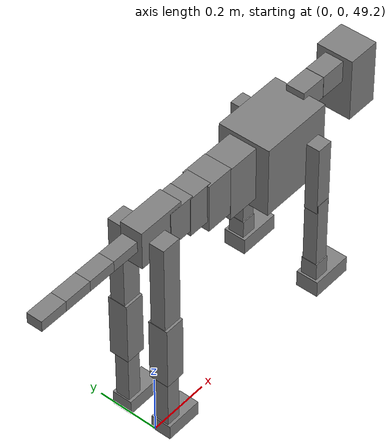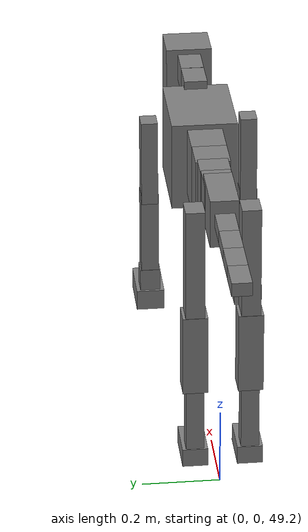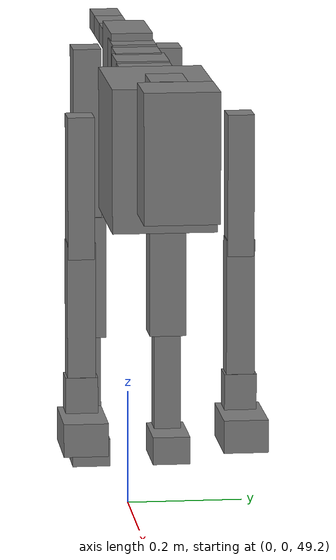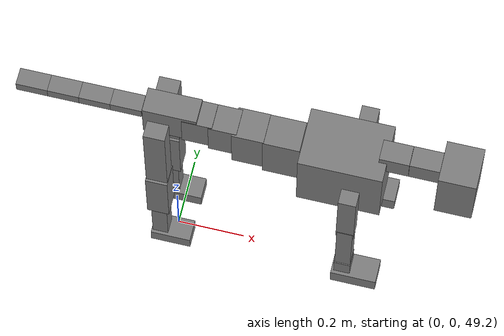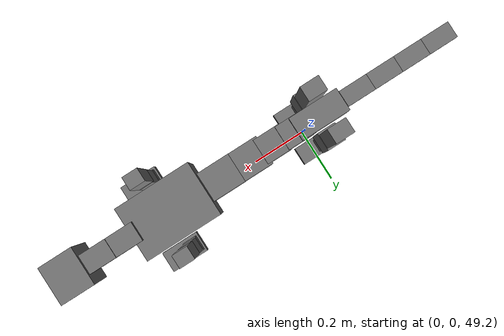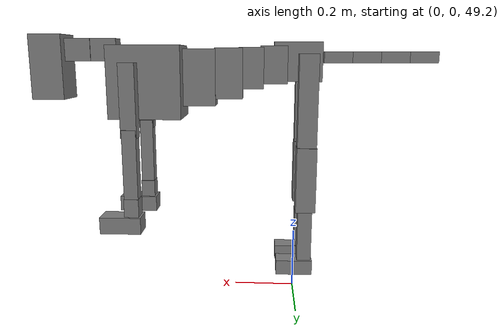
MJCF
<mujoco model="dog">

    <default>
        <joint armature="0.02" stiffness="1" damping="0.2" limited="true"/>
        <geom condim="3" friction="1 0.05 0.05" margin="0.01"/>
        <motor ctrllimited="true" ctrlrange="-1.0 1.0" forcelimited="true" gear="50"/>
    </default>

    <compiler inertiafromgeom="true" angle="radian"/>

    <option timestep="0.016" iterations="50" tolerance="1e-10" solver="Newton" jacobian="dense" cone="pyramidal"/>

    <size nconmax="20000" njmax="60000" nstack="5000000"/>
    <visual>
        <map force="0.1" zfar="30"/>
        <rgba haze="0.15 0.25 0.35 1"/>
        <quality shadowsize="2048"/>
        <global offwidth="800" offheight="800"/>
    </visual>

    <asset>
        <texture type="skybox" builtin="gradient" rgb1="0.3 0.5 0.7" rgb2="0 0 0" width="512" height="512"/>
        <texture name="texplane" type="2d" builtin="checker" rgb1=".2 .3 .4" rgb2=".1 0.15 0.2" width="512" height="512"
                 mark="cross" markrgb=".8 .8 .8"/>
        <texture name="texgeom" type="cube" builtin="flat" mark="cross" width="127" height="1278" rgb1="0.8 0.6 0.4"
                 rgb2="0.8 0.6 0.4" markrgb="1 1 1" random="0.01"/>

        <material name="matplane" reflectance="0.3" texture="texplane" texrepeat="1 1" texuniform="true"/>
        <material name="matgeom" texture="texgeom" texuniform="true" rgba="0.8 0.6 .4 1"/>
    </asset>

    <worldbody>
        <geom name="floor" pos="0 0 0" size="0 0 .25" type="plane" material="matplane" condim="3"/>

        <light directional="false" diffuse=".2 .2 .2" specular="0 0 0" pos="0 0 5" dir="0 0 -1" castshadow="false"/>
        <light mode="targetbodycom" target="torso" directional="false" diffuse=".8 .8 .8" specular="0.3 0.3 0.3"
               pos="0 0 4.0" dir="0 0 -1"/>

        <body name="root" pos="0 0 50">
            <freejoint name="root_1"/>
            <geom type="box" pos="0 0 -0.02" size="0.0774  0.0358  0.063" density="2030"/>

            <body name="spine1" pos="0.054 0 0">
                <joint name="spine1_y" axis="0 1 0" range="0 0.7" limited="true"/>
                <geom type="box" pos="0.02375 0 -0.03" size="0.04375  0.0375  0.05985" density="2030"/>

                <body name="spine2" pos="0.0612 0 0">
                    <joint name="spine2_y" axis="0 1 0" range="-0.15 0.15" limited="true"/>
                    <geom type="box" pos="0.03555  0  -0.04" size="0.04055  0.039  0.06615" density="2030"/>

                    <body name="spine3" pos="0.0730 0 0">
                        <joint name="spine3_y" axis="0 1 0" range="-0.15 0.15" limited="true"/>
                        <geom type="box" pos="0.03555  0  -0.057" size="0.04555  0.0445  0.081" density="2030"/>

                        <body name="spine4" pos="0.0780 0 0">
                            <joint name="spine4_y" axis="0 1 0" range="-0.15 0.15" limited="true"/>
                            <geom type="box" pos="0.05265  0  -0.07" size="0.05265  0.045  0.09135" density="2030"/>

                            <body name="torso" pos="0.1082 0 0">
                                <joint name="torso_y" axis="0 1 0" range="-0.15 0.15" limited="true"/>
                                <geom type="box" pos="0.11925  0  -0.085" size="0.11925  0.085  0.11745"
                                      density="2030"/>

                                <body name="neck1" pos="0.2160  0   0.0180">
                                    <joint name="neck1_y" axis="0 1 0" range="-1.2  -1" limited="true"/>
                                    <geom type="box" pos="0.0423  0  0" size="0.0423  0.03  0.036" density="2325"/>

                                    <body name="neck2" pos="0.0853  0  0">
                                        <joint name="neck2_y" axis="0 1 0" range="0.1  0" limited="true"/>
                                        <geom type="box" pos="0.0423  0  0" size="0.0423  0.03  0.036" density="2325"/>

                                        <body name="head" pos="0.0853  0  0">
                                            <joint name="head_y" axis="0 1 0" range="-0.3  -0.2" limited="true"/>
                                            <geom type="box" pos="0.0531  0  -0.055" size="0.0531  0.06  0.1044"
                                                  density="4030"/>

                                        </body>
                                    </body>
                                </body>

                                <body name="front_shoulder" pos="0.156  0   -0.0480">
                                    <joint name="front_shoulder_y" axis="0 1 0" range="-1 1.5" limited="true"/>
                                    <geom type="box" pos="0 0.13 -0.0899" size="0.0253  0.0217  0.1165" density="1158"/>
                                    <geom type="box" pos="0 -0.13 -0.0899" size="0.0253  0.0217  0.1165"
                                          density="1158"/>

                                    <body name="front_elbow" pos="0  0  -0.1797">
                                        <joint name="front_elbow_y" axis="0 1 0" range="-2 0" limited="true"/>
                                        <geom type="box" pos="0 0.13 -0.1180" size="0.0226  0.0231  0.1180"
                                              density="1081"/>
                                        <geom type="box" pos="0 -0.13 -0.1180" size="0.0226  0.0231  0.1180"
                                              density="1081"/>

                                        <body name="front_wrist" pos="0  0  -0.2360">
                                            <joint name="front_wrist_y" axis="0 1 0" range="-0.2 0" limited="true"/>
                                            <geom type="box" pos="0 0.13 -0.0304" size="0.0237  0.0263  0.0436"
                                                  density="1664"/>
                                            <geom type="box" pos="0 -0.13 -0.0304" size="0.0237  0.0263  0.0436"
                                                  density="1664"/>

                                            <body name="front_finger_end" pos="0  0  -0.0608">
                                                <joint name="front_finger_y" axis="0 1 0" range="-0.4 1"
                                                       limited="true"/>
                                                <geom type="box" pos="0.0363  0.13  -0.0121"
                                                      size="0.0665  0.0363  0.0271" density="1515"/>
                                                <geom type="box" pos="0.0363  -0.13  -0.0121"
                                                      size="0.0665  0.0363  0.0271" density="1515"/>

                                            </body>

                                        </body>
                                    </body>
                                </body>

                            </body>
                        </body>
                    </body>
                </body>
            </body>

            <body name="back_hip" pos="-0.03 0 -0.018">
                <joint name="back_hip_y" axis="0 1 0" range="-1.5 0.3" limited="true"/>
                <geom type="box" pos="0 0.07 -0.1436" size="0.0310  0.0243  0.1664" density="1154"/>
                <geom type="box" pos="0 -0.07 -0.1436" size="0.0310  0.0243  0.1664" density="1154"/>

                <body name="back_knee" pos="0  0  -0.2872">
                    <joint name="back_knee_y" axis="0 1 0" range="0 2.8" limited="true"/>
                    <geom type="box" pos="0 0.07 -0.0911" size="0.0322  0.0318  0.1066" density="1227"/>
                    <geom type="box" pos="0 -0.07 -0.0911" size="0.0322  0.0318  0.1066" density="1227"/>

                    <body name="back_ankle" pos="0  0  -0.1821">
                        <joint name="back_ankle_y" axis="0 1 0" range="-2.2 0" limited="true"/>
                        <geom type="box" pos="0 0.07 -0.0990" size="0.0231  0.0231  0.1102" density="1284"/>
                        <geom type="box" pos="0 -0.07 -0.0990" size="0.0231  0.0231  0.1102" density="1284"/>

                        <body name="back_toe_end" pos="0  0  -0.1979">
                            <joint name="back_toe_y" axis="0 1 0" range="-0.4 1" limited="true"/>
                            <geom type="box" pos="0.0325  0.07  -0.0092" size="0.0595  0.0325  0.0242" density="1515"/>
                            <geom type="box" pos="0.0325  -0.07  -0.0092" size="0.0595  0.0325  0.0242" density="1515"/>

                        </body>
                    </body>
                </body>
            </body>

            <body name="tail1" pos="-0.074 0 -0.006">
                <joint name="tail1_y" axis="0 1 0" range="-0.2 0.2" limited="true"/>
                <geom type="box" pos="-0.0536  0  0" size="0.045  0.025  0.0175" density="1587"/>

                <body name="tail2" pos="-0.09 0 0">
                    <joint name="tail2_y" axis="0 1 0" range="-0.2 0.2" limited="true"/>
                    <geom type="box" pos="-0.0536  0  0" size="0.045  0.025  0.0175" density="1587"/>

                    <body name="tail3" pos="-0.09 0 0">
                        <joint name="tail3_y" axis="0 1 0" range="-0.2 0.2" limited="true"/>
                        <geom type="box" pos="-0.0536  0  0" size="0.045  0.025  0.0175" density="1587"/>

                        <body name="tail4" pos="-0.09 0 0">
                            <joint name="tail4_y" axis="0 1 0" range="-0.2 0.2" limited="true"/>
                            <geom type="box" pos="-0.0536  0  0" size="0.045  0.025  0.0175" density="1587"/>

                        </body>
                    </body>
                </body>
            </body>
        </body>
    </worldbody>

    <actuator>
        <motor joint="spine1_y" forcerange="-150 150     "/>
        <motor joint="spine2_y" forcerange="-150 150     "/>
        <motor joint="spine3_y" forcerange="-150 150     "/>
        <motor joint="spine4_y" forcerange="-150 150     "/>
        <motor joint="torso_y" forcerange="-150 150     "/>
        <motor joint="neck1_y" forcerange="-100 100       "/>
        <motor joint="neck2_y" forcerange="-100 100       "/>
        <motor joint="head_y" forcerange="-150 150       "/>
        <motor joint="front_shoulder_y" forcerange="-129.42 114.92"/>
        <motor joint="front_elbow_y" forcerange="-118.01 150.14"/>
        <motor joint="front_wrist_y" forcerange="-65.34 144.95"/>
        <motor joint="front_finger_y" forcerange="-53.56 99.78"/>
        <motor joint="back_hip_y" forcerange="-282.31 242.07"/>
        <motor joint="back_knee_y" forcerange="-344.49 317.81"/>
        <motor joint="back_angle_y" forcerange="-107.26 161.81"/>
        <motor joint="back_toe_y" forcerange="-127.83 51.87"/>
        <motor joint="tail1_y" forcerange="-50 50     "/>
        <motor joint="tail2_y" forcerange="-50 50     "/>
        <motor joint="tail3_y" forcerange="-50 50     "/>
        <motor joint="tail4_y" forcerange="-50 50     "/>
    </actuator>
</mujoco>
